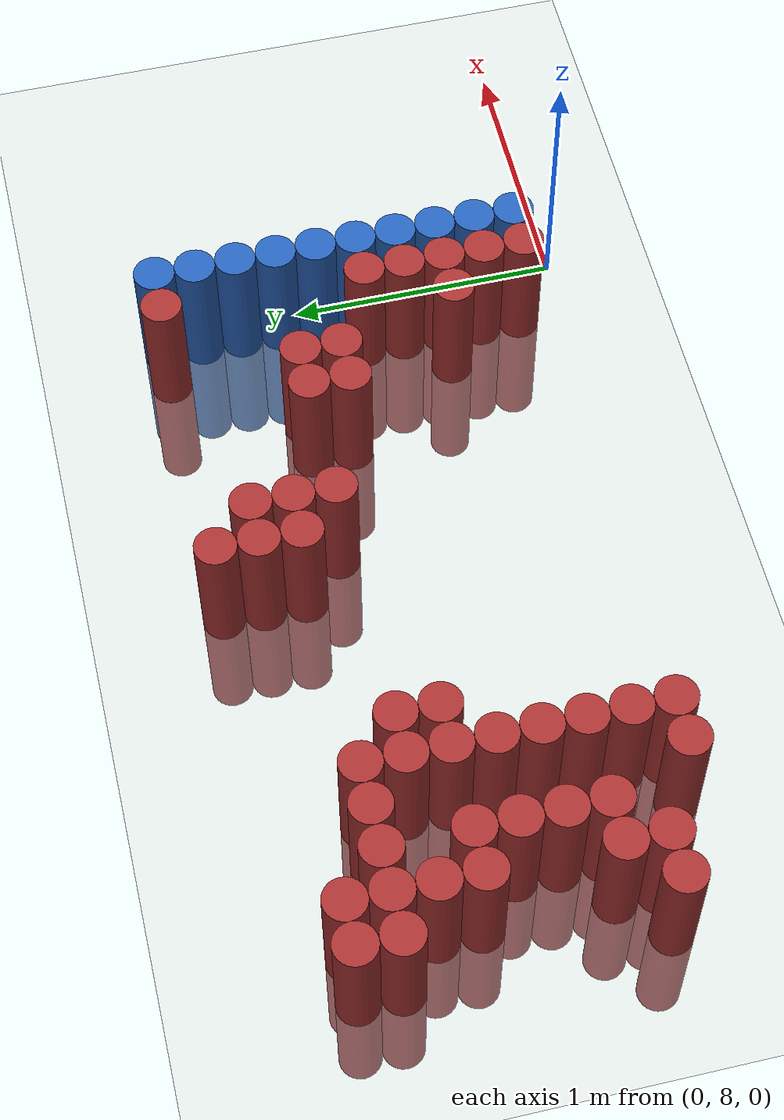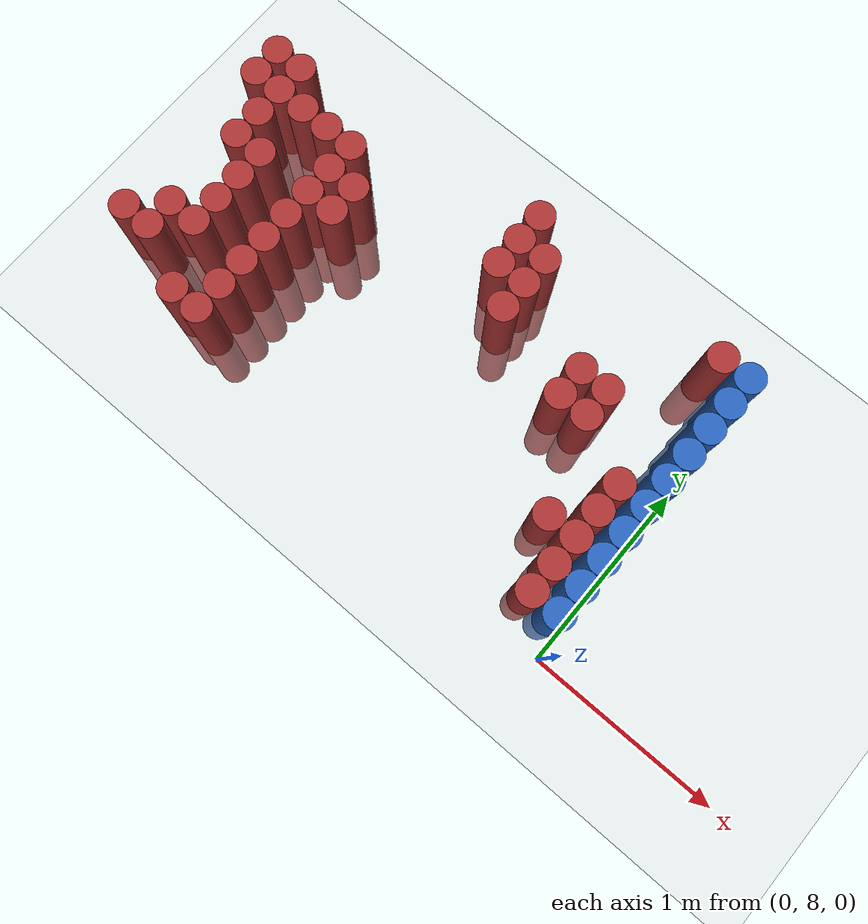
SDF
<sdf version="1.6">
 <world name="default">
  <model name="ground_plane">
   <static>1</static>
   <link name="link">
    <collision name="collision">
     <geometry><plane><normal>0 0 1</normal><size>100 100</size></plane></geometry>
     <surface><friction><ode><mu>100</mu><mu2>50</mu2></ode></friction></surface>
    </collision>
    <visual name="visual">
     <cast_shadows>0</cast_shadows>
     <geometry><plane><normal>0 0 1</normal><size>100 100</size></plane></geometry>
     <material>
      <script><uri>file://media/materials/scripts/gazebo.material</uri><name>Gazebo/Grey</name></script>
     </material>
    </visual>
   </link>
  </model>
  <model name="unit_cylinder_184">
   <static>1</static>
   <pose>-2.775000 8.325000 0.000000 0.000000 0.000000 0.000000</pose>
   <link name="link">
    <inertial>
     <mass>1</mass>
     <inertia><ixx>0.145833</ixx><ixy>0</ixy><ixz>0</ixz><iyy>0.145833</iyy><iyz>0</iyz><izz>0.125</izz></inertia>
    </inertial>
    <collision name="collision">
     <geometry><cylinder><radius>0.075000</radius><length>1</length></cylinder></geometry>
    </collision>
    <visual name="visual">
     <geometry><cylinder><radius>0.075000</radius><length>1</length></cylinder></geometry>
     <material>
      <ambient>0.648000 0.192000 0.192000 1</ambient>
      <diffuse>0.648000 0.192000 0.192000 1</diffuse>
     </material>
     <material>
      <script><name>Gazebo/Grey</name><uri>file://media/materials/scripts/gazebo.material</uri></script>
     </material>
    </visual>
   </link>
  </model>
  <model name="unit_cylinder_185">
   <static>1</static>
   <pose>-2.775000 9.225000 0.000000 0.000000 0.000000 0.000000</pose>
   <link name="link">
    <inertial>
     <mass>1</mass>
     <inertia><ixx>0.145833</ixx><ixy>0</ixy><ixz>0</ixz><iyy>0.145833</iyy><iyz>0</iyz><izz>0.125</izz></inertia>
    </inertial>
    <collision name="collision">
     <geometry><cylinder><radius>0.075000</radius><length>1</length></cylinder></geometry>
    </collision>
    <visual name="visual">
     <geometry><cylinder><radius>0.075000</radius><length>1</length></cylinder></geometry>
     <material>
      <ambient>0.648000 0.192000 0.192000 1</ambient>
      <diffuse>0.648000 0.192000 0.192000 1</diffuse>
     </material>
     <material>
      <script><name>Gazebo/Grey</name><uri>file://media/materials/scripts/gazebo.material</uri></script>
     </material>
    </visual>
   </link>
  </model>
  <model name="unit_cylinder_186">
   <static>1</static>
   <pose>-2.775000 9.375000 0.000000 0.000000 0.000000 0.000000</pose>
   <link name="link">
    <inertial>
     <mass>1</mass>
     <inertia><ixx>0.145833</ixx><ixy>0</ixy><ixz>0</ixz><iyy>0.145833</iyy><iyz>0</iyz><izz>0.125</izz></inertia>
    </inertial>
    <collision name="collision">
     <geometry><cylinder><radius>0.075000</radius><length>1</length></cylinder></geometry>
    </collision>
    <visual name="visual">
     <geometry><cylinder><radius>0.075000</radius><length>1</length></cylinder></geometry>
     <material>
      <ambient>0.648000 0.192000 0.192000 1</ambient>
      <diffuse>0.648000 0.192000 0.192000 1</diffuse>
     </material>
     <material>
      <script><name>Gazebo/Grey</name><uri>file://media/materials/scripts/gazebo.material</uri></script>
     </material>
    </visual>
   </link>
  </model>
  <model name="unit_cylinder_191">
   <static>1</static>
   <pose>-2.625000 8.325000 0.000000 0.000000 0.000000 0.000000</pose>
   <link name="link">
    <inertial>
     <mass>1</mass>
     <inertia><ixx>0.145833</ixx><ixy>0</ixy><ixz>0</ixz><iyy>0.145833</iyy><iyz>0</iyz><izz>0.125</izz></inertia>
    </inertial>
    <collision name="collision">
     <geometry><cylinder><radius>0.075000</radius><length>1</length></cylinder></geometry>
    </collision>
    <visual name="visual">
     <geometry><cylinder><radius>0.075000</radius><length>1</length></cylinder></geometry>
     <material>
      <ambient>0.648000 0.192000 0.192000 1</ambient>
      <diffuse>0.648000 0.192000 0.192000 1</diffuse>
     </material>
     <material>
      <script><name>Gazebo/Grey</name><uri>file://media/materials/scripts/gazebo.material</uri></script>
     </material>
    </visual>
   </link>
  </model>
  <model name="unit_cylinder_192">
   <static>1</static>
   <pose>-2.625000 8.475000 0.000000 0.000000 0.000000 0.000000</pose>
   <link name="link">
    <inertial>
     <mass>1</mass>
     <inertia><ixx>0.145833</ixx><ixy>0</ixy><ixz>0</ixz><iyy>0.145833</iyy><iyz>0</iyz><izz>0.125</izz></inertia>
    </inertial>
    <collision name="collision">
     <geometry><cylinder><radius>0.075000</radius><length>1</length></cylinder></geometry>
    </collision>
    <visual name="visual">
     <geometry><cylinder><radius>0.075000</radius><length>1</length></cylinder></geometry>
     <material>
      <ambient>0.648000 0.192000 0.192000 1</ambient>
      <diffuse>0.648000 0.192000 0.192000 1</diffuse>
     </material>
     <material>
      <script><name>Gazebo/Grey</name><uri>file://media/materials/scripts/gazebo.material</uri></script>
     </material>
    </visual>
   </link>
  </model>
  <model name="unit_cylinder_193">
   <static>1</static>
   <pose>-2.625000 8.925000 0.000000 0.000000 0.000000 0.000000</pose>
   <link name="link">
    <inertial>
     <mass>1</mass>
     <inertia><ixx>0.145833</ixx><ixy>0</ixy><ixz>0</ixz><iyy>0.145833</iyy><iyz>0</iyz><izz>0.125</izz></inertia>
    </inertial>
    <collision name="collision">
     <geometry><cylinder><radius>0.075000</radius><length>1</length></cylinder></geometry>
    </collision>
    <visual name="visual">
     <geometry><cylinder><radius>0.075000</radius><length>1</length></cylinder></geometry>
     <material>
      <ambient>0.648000 0.192000 0.192000 1</ambient>
      <diffuse>0.648000 0.192000 0.192000 1</diffuse>
     </material>
     <material>
      <script><name>Gazebo/Grey</name><uri>file://media/materials/scripts/gazebo.material</uri></script>
     </material>
    </visual>
   </link>
  </model>
  <model name="unit_cylinder_194">
   <static>1</static>
   <pose>-2.625000 9.075000 0.000000 0.000000 0.000000 0.000000</pose>
   <link name="link">
    <inertial>
     <mass>1</mass>
     <inertia><ixx>0.145833</ixx><ixy>0</ixy><ixz>0</ixz><iyy>0.145833</iyy><iyz>0</iyz><izz>0.125</izz></inertia>
    </inertial>
    <collision name="collision">
     <geometry><cylinder><radius>0.075000</radius><length>1</length></cylinder></geometry>
    </collision>
    <visual name="visual">
     <geometry><cylinder><radius>0.075000</radius><length>1</length></cylinder></geometry>
     <material>
      <ambient>0.648000 0.192000 0.192000 1</ambient>
      <diffuse>0.648000 0.192000 0.192000 1</diffuse>
     </material>
     <material>
      <script><name>Gazebo/Grey</name><uri>file://media/materials/scripts/gazebo.material</uri></script>
     </material>
    </visual>
   </link>
  </model>
  <model name="unit_cylinder_195">
   <static>1</static>
   <pose>-2.625000 9.225000 0.000000 0.000000 0.000000 0.000000</pose>
   <link name="link">
    <inertial>
     <mass>1</mass>
     <inertia><ixx>0.145833</ixx><ixy>0</ixy><ixz>0</ixz><iyy>0.145833</iyy><iyz>0</iyz><izz>0.125</izz></inertia>
    </inertial>
    <collision name="collision">
     <geometry><cylinder><radius>0.075000</radius><length>1</length></cylinder></geometry>
    </collision>
    <visual name="visual">
     <geometry><cylinder><radius>0.075000</radius><length>1</length></cylinder></geometry>
     <material>
      <ambient>0.648000 0.192000 0.192000 1</ambient>
      <diffuse>0.648000 0.192000 0.192000 1</diffuse>
     </material>
     <material>
      <script><name>Gazebo/Grey</name><uri>file://media/materials/scripts/gazebo.material</uri></script>
     </material>
    </visual>
   </link>
  </model>
  <model name="unit_cylinder_196">
   <static>1</static>
   <pose>-2.625000 9.375000 0.000000 0.000000 0.000000 0.000000</pose>
   <link name="link">
    <inertial>
     <mass>1</mass>
     <inertia><ixx>0.145833</ixx><ixy>0</ixy><ixz>0</ixz><iyy>0.145833</iyy><iyz>0</iyz><izz>0.125</izz></inertia>
    </inertial>
    <collision name="collision">
     <geometry><cylinder><radius>0.075000</radius><length>1</length></cylinder></geometry>
    </collision>
    <visual name="visual">
     <geometry><cylinder><radius>0.075000</radius><length>1</length></cylinder></geometry>
     <material>
      <ambient>0.648000 0.192000 0.192000 1</ambient>
      <diffuse>0.648000 0.192000 0.192000 1</diffuse>
     </material>
     <material>
      <script><name>Gazebo/Grey</name><uri>file://media/materials/scripts/gazebo.material</uri></script>
     </material>
    </visual>
   </link>
  </model>
  <model name="unit_cylinder_199">
   <static>1</static>
   <pose>-2.475000 8.475000 0.000000 0.000000 0.000000 0.000000</pose>
   <link name="link">
    <inertial>
     <mass>1</mass>
     <inertia><ixx>0.145833</ixx><ixy>0</ixy><ixz>0</ixz><iyy>0.145833</iyy><iyz>0</iyz><izz>0.125</izz></inertia>
    </inertial>
    <collision name="collision">
     <geometry><cylinder><radius>0.075000</radius><length>1</length></cylinder></geometry>
    </collision>
    <visual name="visual">
     <geometry><cylinder><radius>0.075000</radius><length>1</length></cylinder></geometry>
     <material>
      <ambient>0.648000 0.192000 0.192000 1</ambient>
      <diffuse>0.648000 0.192000 0.192000 1</diffuse>
     </material>
     <material>
      <script><name>Gazebo/Grey</name><uri>file://media/materials/scripts/gazebo.material</uri></script>
     </material>
    </visual>
   </link>
  </model>
  <model name="unit_cylinder_200">
   <static>1</static>
   <pose>-2.475000 8.625000 0.000000 0.000000 0.000000 0.000000</pose>
   <link name="link">
    <inertial>
     <mass>1</mass>
     <inertia><ixx>0.145833</ixx><ixy>0</ixy><ixz>0</ixz><iyy>0.145833</iyy><iyz>0</iyz><izz>0.125</izz></inertia>
    </inertial>
    <collision name="collision">
     <geometry><cylinder><radius>0.075000</radius><length>1</length></cylinder></geometry>
    </collision>
    <visual name="visual">
     <geometry><cylinder><radius>0.075000</radius><length>1</length></cylinder></geometry>
     <material>
      <ambient>0.648000 0.192000 0.192000 1</ambient>
      <diffuse>0.648000 0.192000 0.192000 1</diffuse>
     </material>
     <material>
      <script><name>Gazebo/Grey</name><uri>file://media/materials/scripts/gazebo.material</uri></script>
     </material>
    </visual>
   </link>
  </model>
  <model name="unit_cylinder_201">
   <static>1</static>
   <pose>-2.475000 8.775000 0.000000 0.000000 0.000000 0.000000</pose>
   <link name="link">
    <inertial>
     <mass>1</mass>
     <inertia><ixx>0.145833</ixx><ixy>0</ixy><ixz>0</ixz><iyy>0.145833</iyy><iyz>0</iyz><izz>0.125</izz></inertia>
    </inertial>
    <collision name="collision">
     <geometry><cylinder><radius>0.075000</radius><length>1</length></cylinder></geometry>
    </collision>
    <visual name="visual">
     <geometry><cylinder><radius>0.075000</radius><length>1</length></cylinder></geometry>
     <material>
      <ambient>0.648000 0.192000 0.192000 1</ambient>
      <diffuse>0.648000 0.192000 0.192000 1</diffuse>
     </material>
     <material>
      <script><name>Gazebo/Grey</name><uri>file://media/materials/scripts/gazebo.material</uri></script>
     </material>
    </visual>
   </link>
  </model>
  <model name="unit_cylinder_202">
   <static>1</static>
   <pose>-2.475000 8.925000 0.000000 0.000000 0.000000 0.000000</pose>
   <link name="link">
    <inertial>
     <mass>1</mass>
     <inertia><ixx>0.145833</ixx><ixy>0</ixy><ixz>0</ixz><iyy>0.145833</iyy><iyz>0</iyz><izz>0.125</izz></inertia>
    </inertial>
    <collision name="collision">
     <geometry><cylinder><radius>0.075000</radius><length>1</length></cylinder></geometry>
    </collision>
    <visual name="visual">
     <geometry><cylinder><radius>0.075000</radius><length>1</length></cylinder></geometry>
     <material>
      <ambient>0.648000 0.192000 0.192000 1</ambient>
      <diffuse>0.648000 0.192000 0.192000 1</diffuse>
     </material>
     <material>
      <script><name>Gazebo/Grey</name><uri>file://media/materials/scripts/gazebo.material</uri></script>
     </material>
    </visual>
   </link>
  </model>
  <model name="unit_cylinder_203">
   <static>1</static>
   <pose>-2.475000 9.225000 0.000000 0.000000 0.000000 0.000000</pose>
   <link name="link">
    <inertial>
     <mass>1</mass>
     <inertia><ixx>0.145833</ixx><ixy>0</ixy><ixz>0</ixz><iyy>0.145833</iyy><iyz>0</iyz><izz>0.125</izz></inertia>
    </inertial>
    <collision name="collision">
     <geometry><cylinder><radius>0.075000</radius><length>1</length></cylinder></geometry>
    </collision>
    <visual name="visual">
     <geometry><cylinder><radius>0.075000</radius><length>1</length></cylinder></geometry>
     <material>
      <ambient>0.648000 0.192000 0.192000 1</ambient>
      <diffuse>0.648000 0.192000 0.192000 1</diffuse>
     </material>
     <material>
      <script><name>Gazebo/Grey</name><uri>file://media/materials/scripts/gazebo.material</uri></script>
     </material>
    </visual>
   </link>
  </model>
  <model name="unit_cylinder_204">
   <static>1</static>
   <pose>-2.325000 8.175000 0.000000 0.000000 0.000000 0.000000</pose>
   <link name="link">
    <inertial>
     <mass>1</mass>
     <inertia><ixx>0.145833</ixx><ixy>0</ixy><ixz>0</ixz><iyy>0.145833</iyy><iyz>0</iyz><izz>0.125</izz></inertia>
    </inertial>
    <collision name="collision">
     <geometry><cylinder><radius>0.075000</radius><length>1</length></cylinder></geometry>
    </collision>
    <visual name="visual">
     <geometry><cylinder><radius>0.075000</radius><length>1</length></cylinder></geometry>
     <material>
      <ambient>0.648000 0.192000 0.192000 1</ambient>
      <diffuse>0.648000 0.192000 0.192000 1</diffuse>
     </material>
     <material>
      <script><name>Gazebo/Grey</name><uri>file://media/materials/scripts/gazebo.material</uri></script>
     </material>
    </visual>
   </link>
  </model>
  <model name="unit_cylinder_205">
   <static>1</static>
   <pose>-2.325000 9.225000 0.000000 0.000000 0.000000 0.000000</pose>
   <link name="link">
    <inertial>
     <mass>1</mass>
     <inertia><ixx>0.145833</ixx><ixy>0</ixy><ixz>0</ixz><iyy>0.145833</iyy><iyz>0</iyz><izz>0.125</izz></inertia>
    </inertial>
    <collision name="collision">
     <geometry><cylinder><radius>0.075000</radius><length>1</length></cylinder></geometry>
    </collision>
    <visual name="visual">
     <geometry><cylinder><radius>0.075000</radius><length>1</length></cylinder></geometry>
     <material>
      <ambient>0.648000 0.192000 0.192000 1</ambient>
      <diffuse>0.648000 0.192000 0.192000 1</diffuse>
     </material>
     <material>
      <script><name>Gazebo/Grey</name><uri>file://media/materials/scripts/gazebo.material</uri></script>
     </material>
    </visual>
   </link>
  </model>
  <model name="unit_cylinder_211">
   <static>1</static>
   <pose>-2.175000 8.175000 0.000000 0.000000 0.000000 0.000000</pose>
   <link name="link">
    <inertial>
     <mass>1</mass>
     <inertia><ixx>0.145833</ixx><ixy>0</ixy><ixz>0</ixz><iyy>0.145833</iyy><iyz>0</iyz><izz>0.125</izz></inertia>
    </inertial>
    <collision name="collision">
     <geometry><cylinder><radius>0.075000</radius><length>1</length></cylinder></geometry>
    </collision>
    <visual name="visual">
     <geometry><cylinder><radius>0.075000</radius><length>1</length></cylinder></geometry>
     <material>
      <ambient>0.648000 0.192000 0.192000 1</ambient>
      <diffuse>0.648000 0.192000 0.192000 1</diffuse>
     </material>
     <material>
      <script><name>Gazebo/Grey</name><uri>file://media/materials/scripts/gazebo.material</uri></script>
     </material>
    </visual>
   </link>
  </model>
  <model name="unit_cylinder_212">
   <static>1</static>
   <pose>-2.175000 8.325000 0.000000 0.000000 0.000000 0.000000</pose>
   <link name="link">
    <inertial>
     <mass>1</mass>
     <inertia><ixx>0.145833</ixx><ixy>0</ixy><ixz>0</ixz><iyy>0.145833</iyy><iyz>0</iyz><izz>0.125</izz></inertia>
    </inertial>
    <collision name="collision">
     <geometry><cylinder><radius>0.075000</radius><length>1</length></cylinder></geometry>
    </collision>
    <visual name="visual">
     <geometry><cylinder><radius>0.075000</radius><length>1</length></cylinder></geometry>
     <material>
      <ambient>0.648000 0.192000 0.192000 1</ambient>
      <diffuse>0.648000 0.192000 0.192000 1</diffuse>
     </material>
     <material>
      <script><name>Gazebo/Grey</name><uri>file://media/materials/scripts/gazebo.material</uri></script>
     </material>
    </visual>
   </link>
  </model>
  <model name="unit_cylinder_213">
   <static>1</static>
   <pose>-2.175000 8.475000 0.000000 0.000000 0.000000 0.000000</pose>
   <link name="link">
    <inertial>
     <mass>1</mass>
     <inertia><ixx>0.145833</ixx><ixy>0</ixy><ixz>0</ixz><iyy>0.145833</iyy><iyz>0</iyz><izz>0.125</izz></inertia>
    </inertial>
    <collision name="collision">
     <geometry><cylinder><radius>0.075000</radius><length>1</length></cylinder></geometry>
    </collision>
    <visual name="visual">
     <geometry><cylinder><radius>0.075000</radius><length>1</length></cylinder></geometry>
     <material>
      <ambient>0.648000 0.192000 0.192000 1</ambient>
      <diffuse>0.648000 0.192000 0.192000 1</diffuse>
     </material>
     <material>
      <script><name>Gazebo/Grey</name><uri>file://media/materials/scripts/gazebo.material</uri></script>
     </material>
    </visual>
   </link>
  </model>
  <model name="unit_cylinder_214">
   <static>1</static>
   <pose>-2.175000 8.625000 0.000000 0.000000 0.000000 0.000000</pose>
   <link name="link">
    <inertial>
     <mass>1</mass>
     <inertia><ixx>0.145833</ixx><ixy>0</ixy><ixz>0</ixz><iyy>0.145833</iyy><iyz>0</iyz><izz>0.125</izz></inertia>
    </inertial>
    <collision name="collision">
     <geometry><cylinder><radius>0.075000</radius><length>1</length></cylinder></geometry>
    </collision>
    <visual name="visual">
     <geometry><cylinder><radius>0.075000</radius><length>1</length></cylinder></geometry>
     <material>
      <ambient>0.648000 0.192000 0.192000 1</ambient>
      <diffuse>0.648000 0.192000 0.192000 1</diffuse>
     </material>
     <material>
      <script><name>Gazebo/Grey</name><uri>file://media/materials/scripts/gazebo.material</uri></script>
     </material>
    </visual>
   </link>
  </model>
  <model name="unit_cylinder_215">
   <static>1</static>
   <pose>-2.175000 8.775000 0.000000 0.000000 0.000000 0.000000</pose>
   <link name="link">
    <inertial>
     <mass>1</mass>
     <inertia><ixx>0.145833</ixx><ixy>0</ixy><ixz>0</ixz><iyy>0.145833</iyy><iyz>0</iyz><izz>0.125</izz></inertia>
    </inertial>
    <collision name="collision">
     <geometry><cylinder><radius>0.075000</radius><length>1</length></cylinder></geometry>
    </collision>
    <visual name="visual">
     <geometry><cylinder><radius>0.075000</radius><length>1</length></cylinder></geometry>
     <material>
      <ambient>0.648000 0.192000 0.192000 1</ambient>
      <diffuse>0.648000 0.192000 0.192000 1</diffuse>
     </material>
     <material>
      <script><name>Gazebo/Grey</name><uri>file://media/materials/scripts/gazebo.material</uri></script>
     </material>
    </visual>
   </link>
  </model>
  <model name="unit_cylinder_216">
   <static>1</static>
   <pose>-2.175000 8.925000 0.000000 0.000000 0.000000 0.000000</pose>
   <link name="link">
    <inertial>
     <mass>1</mass>
     <inertia><ixx>0.145833</ixx><ixy>0</ixy><ixz>0</ixz><iyy>0.145833</iyy><iyz>0</iyz><izz>0.125</izz></inertia>
    </inertial>
    <collision name="collision">
     <geometry><cylinder><radius>0.075000</radius><length>1</length></cylinder></geometry>
    </collision>
    <visual name="visual">
     <geometry><cylinder><radius>0.075000</radius><length>1</length></cylinder></geometry>
     <material>
      <ambient>0.648000 0.192000 0.192000 1</ambient>
      <diffuse>0.648000 0.192000 0.192000 1</diffuse>
     </material>
     <material>
      <script><name>Gazebo/Grey</name><uri>file://media/materials/scripts/gazebo.material</uri></script>
     </material>
    </visual>
   </link>
  </model>
  <model name="unit_cylinder_217">
   <static>1</static>
   <pose>-2.175000 9.075000 0.000000 0.000000 0.000000 0.000000</pose>
   <link name="link">
    <inertial>
     <mass>1</mass>
     <inertia><ixx>0.145833</ixx><ixy>0</ixy><ixz>0</ixz><iyy>0.145833</iyy><iyz>0</iyz><izz>0.125</izz></inertia>
    </inertial>
    <collision name="collision">
     <geometry><cylinder><radius>0.075000</radius><length>1</length></cylinder></geometry>
    </collision>
    <visual name="visual">
     <geometry><cylinder><radius>0.075000</radius><length>1</length></cylinder></geometry>
     <material>
      <ambient>0.648000 0.192000 0.192000 1</ambient>
      <diffuse>0.648000 0.192000 0.192000 1</diffuse>
     </material>
     <material>
      <script><name>Gazebo/Grey</name><uri>file://media/materials/scripts/gazebo.material</uri></script>
     </material>
    </visual>
   </link>
  </model>
  <model name="unit_cylinder_218">
   <static>1</static>
   <pose>-2.175000 9.225000 0.000000 0.000000 0.000000 0.000000</pose>
   <link name="link">
    <inertial>
     <mass>1</mass>
     <inertia><ixx>0.145833</ixx><ixy>0</ixy><ixz>0</ixz><iyy>0.145833</iyy><iyz>0</iyz><izz>0.125</izz></inertia>
    </inertial>
    <collision name="collision">
     <geometry><cylinder><radius>0.075000</radius><length>1</length></cylinder></geometry>
    </collision>
    <visual name="visual">
     <geometry><cylinder><radius>0.075000</radius><length>1</length></cylinder></geometry>
     <material>
      <ambient>0.648000 0.192000 0.192000 1</ambient>
      <diffuse>0.648000 0.192000 0.192000 1</diffuse>
     </material>
     <material>
      <script><name>Gazebo/Grey</name><uri>file://media/materials/scripts/gazebo.material</uri></script>
     </material>
    </visual>
   </link>
  </model>
  <model name="unit_cylinder_221">
   <static>1</static>
   <pose>-2.025000 8.925000 0.000000 0.000000 0.000000 0.000000</pose>
   <link name="link">
    <inertial>
     <mass>1</mass>
     <inertia><ixx>0.145833</ixx><ixy>0</ixy><ixz>0</ixz><iyy>0.145833</iyy><iyz>0</iyz><izz>0.125</izz></inertia>
    </inertial>
    <collision name="collision">
     <geometry><cylinder><radius>0.075000</radius><length>1</length></cylinder></geometry>
    </collision>
    <visual name="visual">
     <geometry><cylinder><radius>0.075000</radius><length>1</length></cylinder></geometry>
     <material>
      <ambient>0.648000 0.192000 0.192000 1</ambient>
      <diffuse>0.648000 0.192000 0.192000 1</diffuse>
     </material>
     <material>
      <script><name>Gazebo/Grey</name><uri>file://media/materials/scripts/gazebo.material</uri></script>
     </material>
    </visual>
   </link>
  </model>
  <model name="unit_cylinder_222">
   <static>1</static>
   <pose>-2.025000 9.075000 0.000000 0.000000 0.000000 0.000000</pose>
   <link name="link">
    <inertial>
     <mass>1</mass>
     <inertia><ixx>0.145833</ixx><ixy>0</ixy><ixz>0</ixz><iyy>0.145833</iyy><iyz>0</iyz><izz>0.125</izz></inertia>
    </inertial>
    <collision name="collision">
     <geometry><cylinder><radius>0.075000</radius><length>1</length></cylinder></geometry>
    </collision>
    <visual name="visual">
     <geometry><cylinder><radius>0.075000</radius><length>1</length></cylinder></geometry>
     <material>
      <ambient>0.648000 0.192000 0.192000 1</ambient>
      <diffuse>0.648000 0.192000 0.192000 1</diffuse>
     </material>
     <material>
      <script><name>Gazebo/Grey</name><uri>file://media/materials/scripts/gazebo.material</uri></script>
     </material>
    </visual>
   </link>
  </model>
  <model name="unit_cylinder_235">
   <static>1</static>
   <pose>-1.275000 9.225000 0.000000 0.000000 0.000000 0.000000</pose>
   <link name="link">
    <inertial>
     <mass>1</mass>
     <inertia><ixx>0.145833</ixx><ixy>0</ixy><ixz>0</ixz><iyy>0.145833</iyy><iyz>0</iyz><izz>0.125</izz></inertia>
    </inertial>
    <collision name="collision">
     <geometry><cylinder><radius>0.075000</radius><length>1</length></cylinder></geometry>
    </collision>
    <visual name="visual">
     <geometry><cylinder><radius>0.075000</radius><length>1</length></cylinder></geometry>
     <material>
      <ambient>0.648000 0.192000 0.192000 1</ambient>
      <diffuse>0.648000 0.192000 0.192000 1</diffuse>
     </material>
     <material>
      <script><name>Gazebo/Grey</name><uri>file://media/materials/scripts/gazebo.material</uri></script>
     </material>
    </visual>
   </link>
  </model>
  <model name="unit_cylinder_236">
   <static>1</static>
   <pose>-1.275000 9.375000 0.000000 0.000000 0.000000 0.000000</pose>
   <link name="link">
    <inertial>
     <mass>1</mass>
     <inertia><ixx>0.145833</ixx><ixy>0</ixy><ixz>0</ixz><iyy>0.145833</iyy><iyz>0</iyz><izz>0.125</izz></inertia>
    </inertial>
    <collision name="collision">
     <geometry><cylinder><radius>0.075000</radius><length>1</length></cylinder></geometry>
    </collision>
    <visual name="visual">
     <geometry><cylinder><radius>0.075000</radius><length>1</length></cylinder></geometry>
     <material>
      <ambient>0.648000 0.192000 0.192000 1</ambient>
      <diffuse>0.648000 0.192000 0.192000 1</diffuse>
     </material>
     <material>
      <script><name>Gazebo/Grey</name><uri>file://media/materials/scripts/gazebo.material</uri></script>
     </material>
    </visual>
   </link>
  </model>
  <model name="unit_cylinder_237">
   <static>1</static>
   <pose>-1.275000 9.525000 0.000000 0.000000 0.000000 0.000000</pose>
   <link name="link">
    <inertial>
     <mass>1</mass>
     <inertia><ixx>0.145833</ixx><ixy>0</ixy><ixz>0</ixz><iyy>0.145833</iyy><iyz>0</iyz><izz>0.125</izz></inertia>
    </inertial>
    <collision name="collision">
     <geometry><cylinder><radius>0.075000</radius><length>1</length></cylinder></geometry>
    </collision>
    <visual name="visual">
     <geometry><cylinder><radius>0.075000</radius><length>1</length></cylinder></geometry>
     <material>
      <ambient>0.648000 0.192000 0.192000 1</ambient>
      <diffuse>0.648000 0.192000 0.192000 1</diffuse>
     </material>
     <material>
      <script><name>Gazebo/Grey</name><uri>file://media/materials/scripts/gazebo.material</uri></script>
     </material>
    </visual>
   </link>
  </model>
  <model name="unit_cylinder_244">
   <static>1</static>
   <pose>-1.125000 9.075000 0.000000 0.000000 0.000000 0.000000</pose>
   <link name="link">
    <inertial>
     <mass>1</mass>
     <inertia><ixx>0.145833</ixx><ixy>0</ixy><ixz>0</ixz><iyy>0.145833</iyy><iyz>0</iyz><izz>0.125</izz></inertia>
    </inertial>
    <collision name="collision">
     <geometry><cylinder><radius>0.075000</radius><length>1</length></cylinder></geometry>
    </collision>
    <visual name="visual">
     <geometry><cylinder><radius>0.075000</radius><length>1</length></cylinder></geometry>
     <material>
      <ambient>0.648000 0.192000 0.192000 1</ambient>
      <diffuse>0.648000 0.192000 0.192000 1</diffuse>
     </material>
     <material>
      <script><name>Gazebo/Grey</name><uri>file://media/materials/scripts/gazebo.material</uri></script>
     </material>
    </visual>
   </link>
  </model>
  <model name="unit_cylinder_245">
   <static>1</static>
   <pose>-1.125000 9.225000 0.000000 0.000000 0.000000 0.000000</pose>
   <link name="link">
    <inertial>
     <mass>1</mass>
     <inertia><ixx>0.145833</ixx><ixy>0</ixy><ixz>0</ixz><iyy>0.145833</iyy><iyz>0</iyz><izz>0.125</izz></inertia>
    </inertial>
    <collision name="collision">
     <geometry><cylinder><radius>0.075000</radius><length>1</length></cylinder></geometry>
    </collision>
    <visual name="visual">
     <geometry><cylinder><radius>0.075000</radius><length>1</length></cylinder></geometry>
     <material>
      <ambient>0.648000 0.192000 0.192000 1</ambient>
      <diffuse>0.648000 0.192000 0.192000 1</diffuse>
     </material>
     <material>
      <script><name>Gazebo/Grey</name><uri>file://media/materials/scripts/gazebo.material</uri></script>
     </material>
    </visual>
   </link>
  </model>
  <model name="unit_cylinder_246">
   <static>1</static>
   <pose>-1.125000 9.375000 0.000000 0.000000 0.000000 0.000000</pose>
   <link name="link">
    <inertial>
     <mass>1</mass>
     <inertia><ixx>0.145833</ixx><ixy>0</ixy><ixz>0</ixz><iyy>0.145833</iyy><iyz>0</iyz><izz>0.125</izz></inertia>
    </inertial>
    <collision name="collision">
     <geometry><cylinder><radius>0.075000</radius><length>1</length></cylinder></geometry>
    </collision>
    <visual name="visual">
     <geometry><cylinder><radius>0.075000</radius><length>1</length></cylinder></geometry>
     <material>
      <ambient>0.648000 0.192000 0.192000 1</ambient>
      <diffuse>0.648000 0.192000 0.192000 1</diffuse>
     </material>
     <material>
      <script><name>Gazebo/Grey</name><uri>file://media/materials/scripts/gazebo.material</uri></script>
     </material>
    </visual>
   </link>
  </model>
  <model name="unit_cylinder_257">
   <static>1</static>
   <pose>-0.675000 8.925000 0.000000 0.000000 0.000000 0.000000</pose>
   <link name="link">
    <inertial>
     <mass>1</mass>
     <inertia><ixx>0.145833</ixx><ixy>0</ixy><ixz>0</ixz><iyy>0.145833</iyy><iyz>0</iyz><izz>0.125</izz></inertia>
    </inertial>
    <collision name="collision">
     <geometry><cylinder><radius>0.075000</radius><length>1</length></cylinder></geometry>
    </collision>
    <visual name="visual">
     <geometry><cylinder><radius>0.075000</radius><length>1</length></cylinder></geometry>
     <material>
      <ambient>0.648000 0.192000 0.192000 1</ambient>
      <diffuse>0.648000 0.192000 0.192000 1</diffuse>
     </material>
     <material>
      <script><name>Gazebo/Grey</name><uri>file://media/materials/scripts/gazebo.material</uri></script>
     </material>
    </visual>
   </link>
  </model>
  <model name="unit_cylinder_258">
   <static>1</static>
   <pose>-0.675000 9.075000 0.000000 0.000000 0.000000 0.000000</pose>
   <link name="link">
    <inertial>
     <mass>1</mass>
     <inertia><ixx>0.145833</ixx><ixy>0</ixy><ixz>0</ixz><iyy>0.145833</iyy><iyz>0</iyz><izz>0.125</izz></inertia>
    </inertial>
    <collision name="collision">
     <geometry><cylinder><radius>0.075000</radius><length>1</length></cylinder></geometry>
    </collision>
    <visual name="visual">
     <geometry><cylinder><radius>0.075000</radius><length>1</length></cylinder></geometry>
     <material>
      <ambient>0.648000 0.192000 0.192000 1</ambient>
      <diffuse>0.648000 0.192000 0.192000 1</diffuse>
     </material>
     <material>
      <script><name>Gazebo/Grey</name><uri>file://media/materials/scripts/gazebo.material</uri></script>
     </material>
    </visual>
   </link>
  </model>
  <model name="unit_cylinder_264">
   <static>1</static>
   <pose>-0.525000 8.925000 0.000000 0.000000 0.000000 0.000000</pose>
   <link name="link">
    <inertial>
     <mass>1</mass>
     <inertia><ixx>0.145833</ixx><ixy>0</ixy><ixz>0</ixz><iyy>0.145833</iyy><iyz>0</iyz><izz>0.125</izz></inertia>
    </inertial>
    <collision name="collision">
     <geometry><cylinder><radius>0.075000</radius><length>1</length></cylinder></geometry>
    </collision>
    <visual name="visual">
     <geometry><cylinder><radius>0.075000</radius><length>1</length></cylinder></geometry>
     <material>
      <ambient>0.648000 0.192000 0.192000 1</ambient>
      <diffuse>0.648000 0.192000 0.192000 1</diffuse>
     </material>
     <material>
      <script><name>Gazebo/Grey</name><uri>file://media/materials/scripts/gazebo.material</uri></script>
     </material>
    </visual>
   </link>
  </model>
  <model name="unit_cylinder_265">
   <static>1</static>
   <pose>-0.525000 9.075000 0.000000 0.000000 0.000000 0.000000</pose>
   <link name="link">
    <inertial>
     <mass>1</mass>
     <inertia><ixx>0.145833</ixx><ixy>0</ixy><ixz>0</ixz><iyy>0.145833</iyy><iyz>0</iyz><izz>0.125</izz></inertia>
    </inertial>
    <collision name="collision">
     <geometry><cylinder><radius>0.075000</radius><length>1</length></cylinder></geometry>
    </collision>
    <visual name="visual">
     <geometry><cylinder><radius>0.075000</radius><length>1</length></cylinder></geometry>
     <material>
      <ambient>0.648000 0.192000 0.192000 1</ambient>
      <diffuse>0.648000 0.192000 0.192000 1</diffuse>
     </material>
     <material>
      <script><name>Gazebo/Grey</name><uri>file://media/materials/scripts/gazebo.material</uri></script>
     </material>
    </visual>
   </link>
  </model>
  <model name="unit_cylinder_273">
   <static>1</static>
   <pose>-0.375000 8.475000 0.000000 0.000000 0.000000 0.000000</pose>
   <link name="link">
    <inertial>
     <mass>1</mass>
     <inertia><ixx>0.145833</ixx><ixy>0</ixy><ixz>0</ixz><iyy>0.145833</iyy><iyz>0</iyz><izz>0.125</izz></inertia>
    </inertial>
    <collision name="collision">
     <geometry><cylinder><radius>0.075000</radius><length>1</length></cylinder></geometry>
    </collision>
    <visual name="visual">
     <geometry><cylinder><radius>0.075000</radius><length>1</length></cylinder></geometry>
     <material>
      <ambient>0.648000 0.192000 0.192000 1</ambient>
      <diffuse>0.648000 0.192000 0.192000 1</diffuse>
     </material>
     <material>
      <script><name>Gazebo/Grey</name><uri>file://media/materials/scripts/gazebo.material</uri></script>
     </material>
    </visual>
   </link>
  </model>
  <model name="unit_cylinder_281">
   <static>1</static>
   <pose>-0.225000 8.175000 0.000000 0.000000 0.000000 0.000000</pose>
   <link name="link">
    <inertial>
     <mass>1</mass>
     <inertia><ixx>0.145833</ixx><ixy>0</ixy><ixz>0</ixz><iyy>0.145833</iyy><iyz>0</iyz><izz>0.125</izz></inertia>
    </inertial>
    <collision name="collision">
     <geometry><cylinder><radius>0.075000</radius><length>1</length></cylinder></geometry>
    </collision>
    <visual name="visual">
     <geometry><cylinder><radius>0.075000</radius><length>1</length></cylinder></geometry>
     <material>
      <ambient>0.648000 0.192000 0.192000 1</ambient>
      <diffuse>0.648000 0.192000 0.192000 1</diffuse>
     </material>
     <material>
      <script><name>Gazebo/Grey</name><uri>file://media/materials/scripts/gazebo.material</uri></script>
     </material>
    </visual>
   </link>
  </model>
  <model name="unit_cylinder_282">
   <static>1</static>
   <pose>-0.225000 8.325000 0.000000 0.000000 0.000000 0.000000</pose>
   <link name="link">
    <inertial>
     <mass>1</mass>
     <inertia><ixx>0.145833</ixx><ixy>0</ixy><ixz>0</ixz><iyy>0.145833</iyy><iyz>0</iyz><izz>0.125</izz></inertia>
    </inertial>
    <collision name="collision">
     <geometry><cylinder><radius>0.075000</radius><length>1</length></cylinder></geometry>
    </collision>
    <visual name="visual">
     <geometry><cylinder><radius>0.075000</radius><length>1</length></cylinder></geometry>
     <material>
      <ambient>0.648000 0.192000 0.192000 1</ambient>
      <diffuse>0.648000 0.192000 0.192000 1</diffuse>
     </material>
     <material>
      <script><name>Gazebo/Grey</name><uri>file://media/materials/scripts/gazebo.material</uri></script>
     </material>
    </visual>
   </link>
  </model>
  <model name="unit_cylinder_283">
   <static>1</static>
   <pose>-0.225000 8.475000 0.000000 0.000000 0.000000 0.000000</pose>
   <link name="link">
    <inertial>
     <mass>1</mass>
     <inertia><ixx>0.145833</ixx><ixy>0</ixy><ixz>0</ixz><iyy>0.145833</iyy><iyz>0</iyz><izz>0.125</izz></inertia>
    </inertial>
    <collision name="collision">
     <geometry><cylinder><radius>0.075000</radius><length>1</length></cylinder></geometry>
    </collision>
    <visual name="visual">
     <geometry><cylinder><radius>0.075000</radius><length>1</length></cylinder></geometry>
     <material>
      <ambient>0.648000 0.192000 0.192000 1</ambient>
      <diffuse>0.648000 0.192000 0.192000 1</diffuse>
     </material>
     <material>
      <script><name>Gazebo/Grey</name><uri>file://media/materials/scripts/gazebo.material</uri></script>
     </material>
    </visual>
   </link>
  </model>
  <model name="unit_cylinder_284">
   <static>1</static>
   <pose>-0.225000 8.625000 0.000000 0.000000 0.000000 0.000000</pose>
   <link name="link">
    <inertial>
     <mass>1</mass>
     <inertia><ixx>0.145833</ixx><ixy>0</ixy><ixz>0</ixz><iyy>0.145833</iyy><iyz>0</iyz><izz>0.125</izz></inertia>
    </inertial>
    <collision name="collision">
     <geometry><cylinder><radius>0.075000</radius><length>1</length></cylinder></geometry>
    </collision>
    <visual name="visual">
     <geometry><cylinder><radius>0.075000</radius><length>1</length></cylinder></geometry>
     <material>
      <ambient>0.648000 0.192000 0.192000 1</ambient>
      <diffuse>0.648000 0.192000 0.192000 1</diffuse>
     </material>
     <material>
      <script><name>Gazebo/Grey</name><uri>file://media/materials/scripts/gazebo.material</uri></script>
     </material>
    </visual>
   </link>
  </model>
  <model name="unit_cylinder_285">
   <static>1</static>
   <pose>-0.225000 8.775000 0.000000 0.000000 0.000000 0.000000</pose>
   <link name="link">
    <inertial>
     <mass>1</mass>
     <inertia><ixx>0.145833</ixx><ixy>0</ixy><ixz>0</ixz><iyy>0.145833</iyy><iyz>0</iyz><izz>0.125</izz></inertia>
    </inertial>
    <collision name="collision">
     <geometry><cylinder><radius>0.075000</radius><length>1</length></cylinder></geometry>
    </collision>
    <visual name="visual">
     <geometry><cylinder><radius>0.075000</radius><length>1</length></cylinder></geometry>
     <material>
      <ambient>0.648000 0.192000 0.192000 1</ambient>
      <diffuse>0.648000 0.192000 0.192000 1</diffuse>
     </material>
     <material>
      <script><name>Gazebo/Grey</name><uri>file://media/materials/scripts/gazebo.material</uri></script>
     </material>
    </visual>
   </link>
  </model>
  <model name="unit_cylinder_286">
   <static>1</static>
   <pose>-0.225000 9.525000 0.000000 0.000000 0.000000 0.000000</pose>
   <link name="link">
    <inertial>
     <mass>1</mass>
     <inertia><ixx>0.145833</ixx><ixy>0</ixy><ixz>0</ixz><iyy>0.145833</iyy><iyz>0</iyz><izz>0.125</izz></inertia>
    </inertial>
    <collision name="collision">
     <geometry><cylinder><radius>0.075000</radius><length>1</length></cylinder></geometry>
    </collision>
    <visual name="visual">
     <geometry><cylinder><radius>0.075000</radius><length>1</length></cylinder></geometry>
     <material>
      <ambient>0.648000 0.192000 0.192000 1</ambient>
      <diffuse>0.648000 0.192000 0.192000 1</diffuse>
     </material>
     <material>
      <script><name>Gazebo/Grey</name><uri>file://media/materials/scripts/gazebo.material</uri></script>
     </material>
    </visual>
   </link>
  </model>
  <model name="unit_cylinder_307">
   <static>1</static>
   <pose>-0.075000 8.175000 0.000000 0.000000 0.000000 0.000000</pose>
   <link name="link">
    <inertial>
     <mass>1</mass>
     <inertia><ixx>0.145833</ixx><ixy>0</ixy><ixz>0</ixz><iyy>0.145833</iyy><iyz>0</iyz><izz>0.125</izz></inertia>
    </inertial>
    <collision name="collision">
     <geometry><cylinder><radius>0.075000</radius><length>1</length></cylinder></geometry>
    </collision>
    <visual name="visual">
     <geometry><cylinder><radius>0.075000</radius><length>1</length></cylinder></geometry>
     <material>
      <ambient>0.152000 0.379000 0.720000 1</ambient>
      <diffuse>0.152000 0.379000 0.720000 1</diffuse>
     </material>
     <material>
      <script><name>Gazebo/Grey</name><uri>file://media/materials/scripts/gazebo.material</uri></script>
     </material>
    </visual>
   </link>
  </model>
  <model name="unit_cylinder_308">
   <static>1</static>
   <pose>-0.075000 8.325000 0.000000 0.000000 0.000000 0.000000</pose>
   <link name="link">
    <inertial>
     <mass>1</mass>
     <inertia><ixx>0.145833</ixx><ixy>0</ixy><ixz>0</ixz><iyy>0.145833</iyy><iyz>0</iyz><izz>0.125</izz></inertia>
    </inertial>
    <collision name="collision">
     <geometry><cylinder><radius>0.075000</radius><length>1</length></cylinder></geometry>
    </collision>
    <visual name="visual">
     <geometry><cylinder><radius>0.075000</radius><length>1</length></cylinder></geometry>
     <material>
      <ambient>0.152000 0.379000 0.720000 1</ambient>
      <diffuse>0.152000 0.379000 0.720000 1</diffuse>
     </material>
     <material>
      <script><name>Gazebo/Grey</name><uri>file://media/materials/scripts/gazebo.material</uri></script>
     </material>
    </visual>
   </link>
  </model>
  <model name="unit_cylinder_309">
   <static>1</static>
   <pose>-0.075000 8.475000 0.000000 0.000000 0.000000 0.000000</pose>
   <link name="link">
    <inertial>
     <mass>1</mass>
     <inertia><ixx>0.145833</ixx><ixy>0</ixy><ixz>0</ixz><iyy>0.145833</iyy><iyz>0</iyz><izz>0.125</izz></inertia>
    </inertial>
    <collision name="collision">
     <geometry><cylinder><radius>0.075000</radius><length>1</length></cylinder></geometry>
    </collision>
    <visual name="visual">
     <geometry><cylinder><radius>0.075000</radius><length>1</length></cylinder></geometry>
     <material>
      <ambient>0.152000 0.379000 0.720000 1</ambient>
      <diffuse>0.152000 0.379000 0.720000 1</diffuse>
     </material>
     <material>
      <script><name>Gazebo/Grey</name><uri>file://media/materials/scripts/gazebo.material</uri></script>
     </material>
    </visual>
   </link>
  </model>
  <model name="unit_cylinder_310">
   <static>1</static>
   <pose>-0.075000 8.625000 0.000000 0.000000 0.000000 0.000000</pose>
   <link name="link">
    <inertial>
     <mass>1</mass>
     <inertia><ixx>0.145833</ixx><ixy>0</ixy><ixz>0</ixz><iyy>0.145833</iyy><iyz>0</iyz><izz>0.125</izz></inertia>
    </inertial>
    <collision name="collision">
     <geometry><cylinder><radius>0.075000</radius><length>1</length></cylinder></geometry>
    </collision>
    <visual name="visual">
     <geometry><cylinder><radius>0.075000</radius><length>1</length></cylinder></geometry>
     <material>
      <ambient>0.152000 0.379000 0.720000 1</ambient>
      <diffuse>0.152000 0.379000 0.720000 1</diffuse>
     </material>
     <material>
      <script><name>Gazebo/Grey</name><uri>file://media/materials/scripts/gazebo.material</uri></script>
     </material>
    </visual>
   </link>
  </model>
  <model name="unit_cylinder_311">
   <static>1</static>
   <pose>-0.075000 8.775000 0.000000 0.000000 0.000000 0.000000</pose>
   <link name="link">
    <inertial>
     <mass>1</mass>
     <inertia><ixx>0.145833</ixx><ixy>0</ixy><ixz>0</ixz><iyy>0.145833</iyy><iyz>0</iyz><izz>0.125</izz></inertia>
    </inertial>
    <collision name="collision">
     <geometry><cylinder><radius>0.075000</radius><length>1</length></cylinder></geometry>
    </collision>
    <visual name="visual">
     <geometry><cylinder><radius>0.075000</radius><length>1</length></cylinder></geometry>
     <material>
      <ambient>0.152000 0.379000 0.720000 1</ambient>
      <diffuse>0.152000 0.379000 0.720000 1</diffuse>
     </material>
     <material>
      <script><name>Gazebo/Grey</name><uri>file://media/materials/scripts/gazebo.material</uri></script>
     </material>
    </visual>
   </link>
  </model>
  <model name="unit_cylinder_312">
   <static>1</static>
   <pose>-0.075000 8.925000 0.000000 0.000000 0.000000 0.000000</pose>
   <link name="link">
    <inertial>
     <mass>1</mass>
     <inertia><ixx>0.145833</ixx><ixy>0</ixy><ixz>0</ixz><iyy>0.145833</iyy><iyz>0</iyz><izz>0.125</izz></inertia>
    </inertial>
    <collision name="collision">
     <geometry><cylinder><radius>0.075000</radius><length>1</length></cylinder></geometry>
    </collision>
    <visual name="visual">
     <geometry><cylinder><radius>0.075000</radius><length>1</length></cylinder></geometry>
     <material>
      <ambient>0.152000 0.379000 0.720000 1</ambient>
      <diffuse>0.152000 0.379000 0.720000 1</diffuse>
     </material>
     <material>
      <script><name>Gazebo/Grey</name><uri>file://media/materials/scripts/gazebo.material</uri></script>
     </material>
    </visual>
   </link>
  </model>
  <model name="unit_cylinder_313">
   <static>1</static>
   <pose>-0.075000 9.075000 0.000000 0.000000 0.000000 0.000000</pose>
   <link name="link">
    <inertial>
     <mass>1</mass>
     <inertia><ixx>0.145833</ixx><ixy>0</ixy><ixz>0</ixz><iyy>0.145833</iyy><iyz>0</iyz><izz>0.125</izz></inertia>
    </inertial>
    <collision name="collision">
     <geometry><cylinder><radius>0.075000</radius><length>1</length></cylinder></geometry>
    </collision>
    <visual name="visual">
     <geometry><cylinder><radius>0.075000</radius><length>1</length></cylinder></geometry>
     <material>
      <ambient>0.152000 0.379000 0.720000 1</ambient>
      <diffuse>0.152000 0.379000 0.720000 1</diffuse>
     </material>
     <material>
      <script><name>Gazebo/Grey</name><uri>file://media/materials/scripts/gazebo.material</uri></script>
     </material>
    </visual>
   </link>
  </model>
  <model name="unit_cylinder_314">
   <static>1</static>
   <pose>-0.075000 9.225000 0.000000 0.000000 0.000000 0.000000</pose>
   <link name="link">
    <inertial>
     <mass>1</mass>
     <inertia><ixx>0.145833</ixx><ixy>0</ixy><ixz>0</ixz><iyy>0.145833</iyy><iyz>0</iyz><izz>0.125</izz></inertia>
    </inertial>
    <collision name="collision">
     <geometry><cylinder><radius>0.075000</radius><length>1</length></cylinder></geometry>
    </collision>
    <visual name="visual">
     <geometry><cylinder><radius>0.075000</radius><length>1</length></cylinder></geometry>
     <material>
      <ambient>0.152000 0.379000 0.720000 1</ambient>
      <diffuse>0.152000 0.379000 0.720000 1</diffuse>
     </material>
     <material>
      <script><name>Gazebo/Grey</name><uri>file://media/materials/scripts/gazebo.material</uri></script>
     </material>
    </visual>
   </link>
  </model>
  <model name="unit_cylinder_315">
   <static>1</static>
   <pose>-0.075000 9.375000 0.000000 0.000000 0.000000 0.000000</pose>
   <link name="link">
    <inertial>
     <mass>1</mass>
     <inertia><ixx>0.145833</ixx><ixy>0</ixy><ixz>0</ixz><iyy>0.145833</iyy><iyz>0</iyz><izz>0.125</izz></inertia>
    </inertial>
    <collision name="collision">
     <geometry><cylinder><radius>0.075000</radius><length>1</length></cylinder></geometry>
    </collision>
    <visual name="visual">
     <geometry><cylinder><radius>0.075000</radius><length>1</length></cylinder></geometry>
     <material>
      <ambient>0.152000 0.379000 0.720000 1</ambient>
      <diffuse>0.152000 0.379000 0.720000 1</diffuse>
     </material>
     <material>
      <script><name>Gazebo/Grey</name><uri>file://media/materials/scripts/gazebo.material</uri></script>
     </material>
    </visual>
   </link>
  </model>
  <model name="unit_cylinder_316">
   <static>1</static>
   <pose>-0.075000 9.525000 0.000000 0.000000 0.000000 0.000000</pose>
   <link name="link">
    <inertial>
     <mass>1</mass>
     <inertia><ixx>0.145833</ixx><ixy>0</ixy><ixz>0</ixz><iyy>0.145833</iyy><iyz>0</iyz><izz>0.125</izz></inertia>
    </inertial>
    <collision name="collision">
     <geometry><cylinder><radius>0.075000</radius><length>1</length></cylinder></geometry>
    </collision>
    <visual name="visual">
     <geometry><cylinder><radius>0.075000</radius><length>1</length></cylinder></geometry>
     <material>
      <ambient>0.152000 0.379000 0.720000 1</ambient>
      <diffuse>0.152000 0.379000 0.720000 1</diffuse>
     </material>
     <material>
      <script><name>Gazebo/Grey</name><uri>file://media/materials/scripts/gazebo.material</uri></script>
     </material>
    </visual>
   </link>
  </model>
 </world>
</sdf>
